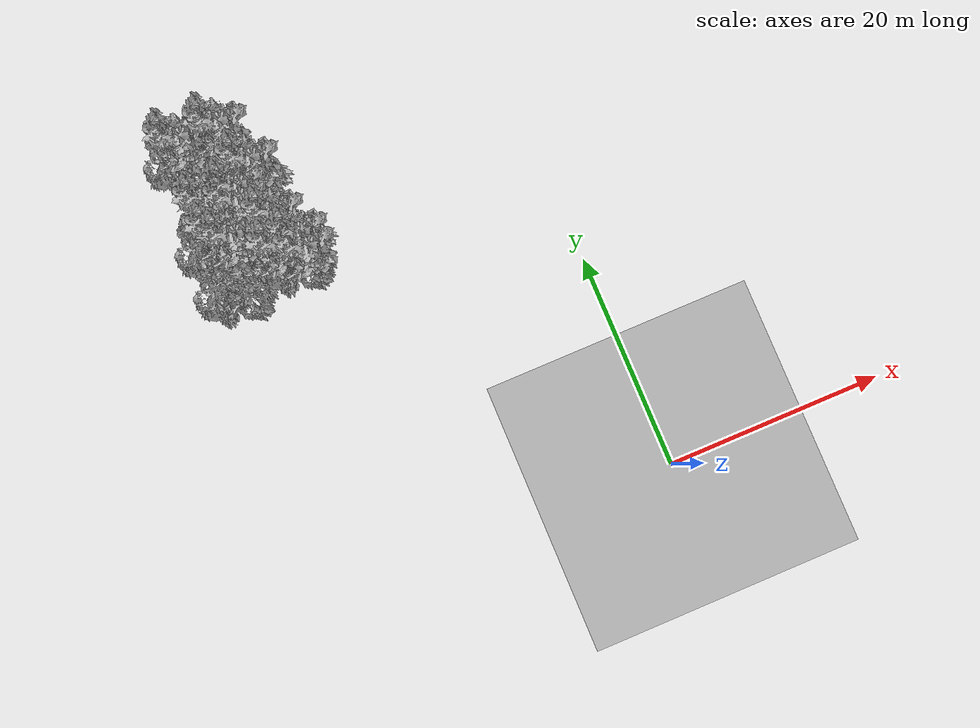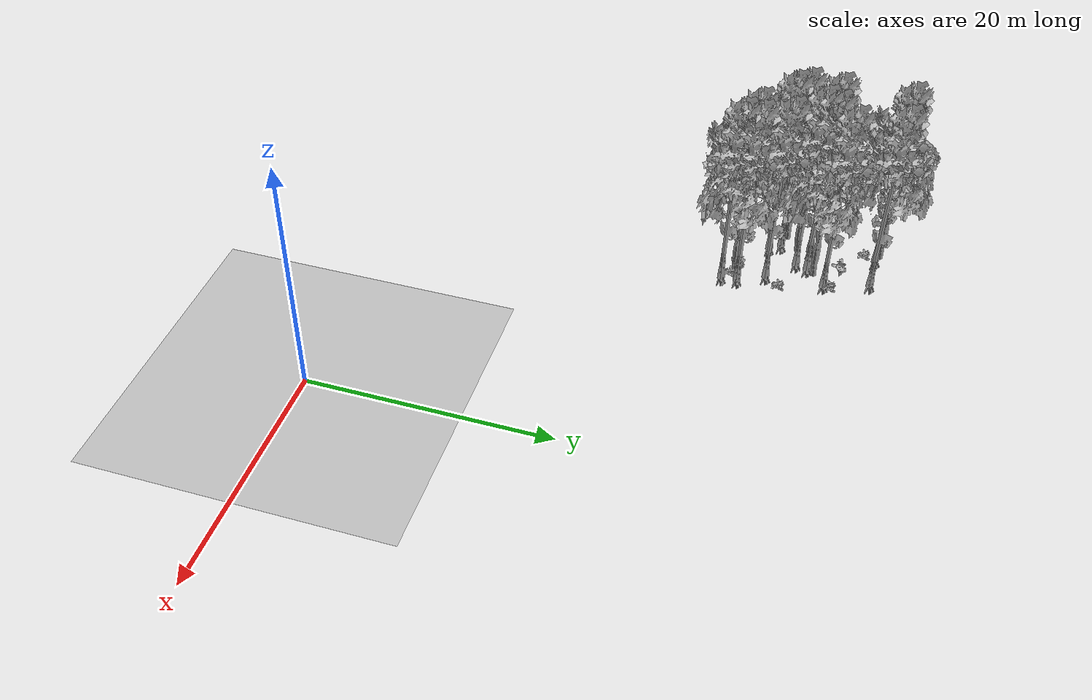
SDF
<sdf version="1.7">
 <world name="default">
  <model name="ground_plane">
   <static>1</static>
   <link name="link">
    <collision name="collision">
     <pose>-50 0 0 0 -0 0</pose>
     <geometry><plane><normal>0 0 1</normal><size>80 80</size></plane></geometry>
     <surface><contact><ode><min_depth>0.01</min_depth><max_vel>0</max_vel></ode></contact></surface>
    </collision>
    <visual name="grass">
     <cast_shadows>0</cast_shadows>
     <geometry>
      <mesh>
       <scale>0.46714285714285714 0.46714285714285714 0.1</scale>
       <uri>file://grass_plane/meshes/grass_plane.dae</uri>
      </mesh>
     </geometry>
    </visual>
   </link>
  </model>
  <model name="Tree 13">
   <static>1</static>
   <pose>-22.846539033407645 28.64149036128063 0 1.57079 -0 0</pose>
   <link name="link">
    <collision name="collision">
     <geometry><mesh><scale>3.5 5 3.5</scale><uri>model://tree_2/meshes/tree_2.obj</uri></mesh></geometry>
    </collision>
    <visual name="visual">
     <geometry><mesh><scale>3.5 5 3.5</scale><uri>model://tree_2/meshes/tree_2.obj</uri></mesh></geometry>
    </visual>
   </link>
  </model>
  <model name="Tree 19">
   <static>1</static>
   <pose>-24.291597076596993 39.67959928283102 0 1.57079 -0 0</pose>
   <link name="link">
    <collision name="collision">
     <geometry><mesh><scale>3.5 5 3.5</scale><uri>model://tree_9/meshes/tree_9.obj</uri></mesh></geometry>
    </collision>
    <visual name="visual">
     <geometry><mesh><scale>3.5 5 3.5</scale><uri>model://tree_9/meshes/tree_9.obj</uri></mesh></geometry>
    </visual>
   </link>
  </model>
  <model name="Tree 91">
   <static>1</static>
   <pose>-24.267522736100084 34.97549790196025 0 1.57079 -0 0</pose>
   <link name="link">
    <collision name="collision">
     <geometry><mesh><scale>3.5 5 3.5</scale><uri>model://tree_2/meshes/tree_2.obj</uri></mesh></geometry>
    </collision>
    <visual name="visual">
     <geometry><mesh><scale>3.5 5 3.5</scale><uri>model://tree_2/meshes/tree_2.obj</uri></mesh></geometry>
    </visual>
   </link>
  </model>
  <model name="Tree 95">
   <static>1</static>
   <pose>-28.18344296402496 39.99848362453858 0 1.57079 -0 0</pose>
   <link name="link">
    <collision name="collision">
     <geometry><mesh><scale>3.5 5 3.5</scale><uri>model://tree_2/meshes/tree_2.obj</uri></mesh></geometry>
    </collision>
    <visual name="visual">
     <geometry><mesh><scale>3.5 5 3.5</scale><uri>model://tree_2/meshes/tree_2.obj</uri></mesh></geometry>
    </visual>
   </link>
  </model>
  <model name="Tree 218">
   <static>1</static>
   <pose>-21.57840250588282 27.766716876980425 0 1.57079 -0 0</pose>
   <link name="link">
    <collision name="collision">
     <geometry><mesh><scale>3.5 5 3.5</scale><uri>model://tree_9/meshes/tree_9.obj</uri></mesh></geometry>
    </collision>
    <visual name="visual">
     <geometry><mesh><scale>3.5 5 3.5</scale><uri>model://tree_9/meshes/tree_9.obj</uri></mesh></geometry>
    </visual>
   </link>
  </model>
  <model name="Tree 223">
   <static>1</static>
   <pose>-24.787022888755782 34.388037533062885 0 1.57079 -0 0</pose>
   <link name="link">
    <collision name="collision">
     <geometry><mesh><scale>3.5 5 3.5</scale><uri>model://tree_9/meshes/tree_9.obj</uri></mesh></geometry>
    </collision>
    <visual name="visual">
     <geometry><mesh><scale>3.5 5 3.5</scale><uri>model://tree_9/meshes/tree_9.obj</uri></mesh></geometry>
    </visual>
   </link>
  </model>
  <model name="Tree 252">
   <static>1</static>
   <pose>-27.575594454108607 39.70890977629362 0 1.57079 -0 0</pose>
   <link name="link">
    <collision name="collision">
     <geometry><mesh><scale>3.5 5 3.5</scale><uri>model://tree_9/meshes/tree_9.obj</uri></mesh></geometry>
    </collision>
    <visual name="visual">
     <geometry><mesh><scale>3.5 5 3.5</scale><uri>model://tree_9/meshes/tree_9.obj</uri></mesh></geometry>
    </visual>
   </link>
  </model>
  <model name="Tree 257">
   <static>1</static>
   <pose>-21.64681672120912 29.079161275077126 0 1.57079 -0 0</pose>
   <link name="link">
    <collision name="collision">
     <geometry><mesh><scale>3.5 5 3.5</scale><uri>model://tree_9/meshes/tree_9.obj</uri></mesh></geometry>
    </collision>
    <visual name="visual">
     <geometry><mesh><scale>3.5 5 3.5</scale><uri>model://tree_9/meshes/tree_9.obj</uri></mesh></geometry>
    </visual>
   </link>
  </model>
  <model name="Tree 274">
   <static>1</static>
   <pose>-27.266594752322366 34.26676148557077 0 1.57079 -0 0</pose>
   <link name="link">
    <collision name="collision">
     <geometry><mesh><scale>3.5 5 3.5</scale><uri>model://tree_9/meshes/tree_9.obj</uri></mesh></geometry>
    </collision>
    <visual name="visual">
     <geometry><mesh><scale>3.5 5 3.5</scale><uri>model://tree_9/meshes/tree_9.obj</uri></mesh></geometry>
    </visual>
   </link>
  </model>
  <model name="Tree 299">
   <static>1</static>
   <pose>-28.379870049304316 28.138641505595544 0 1.57079 -0 0</pose>
   <link name="link">
    <collision name="collision">
     <geometry><mesh><scale>3.5 5 3.5</scale><uri>model://tree_2/meshes/tree_2.obj</uri></mesh></geometry>
    </collision>
    <visual name="visual">
     <geometry><mesh><scale>3.5 5 3.5</scale><uri>model://tree_2/meshes/tree_2.obj</uri></mesh></geometry>
    </visual>
   </link>
  </model>
  <model name="Tree 355">
   <static>1</static>
   <pose>-25.131391191752865 33.41216311175572 0 1.57079 -0 0</pose>
   <link name="link">
    <collision name="collision">
     <geometry><mesh><scale>3.5 5 3.5</scale><uri>model://tree_9/meshes/tree_9.obj</uri></mesh></geometry>
    </collision>
    <visual name="visual">
     <geometry><mesh><scale>3.5 5 3.5</scale><uri>model://tree_9/meshes/tree_9.obj</uri></mesh></geometry>
    </visual>
   </link>
  </model>
  <model name="Tree 442">
   <static>1</static>
   <pose>-22.816803367159594 31.26227337971413 0 1.57079 -0 0</pose>
   <link name="link">
    <collision name="collision">
     <geometry><mesh><scale>3.5 5 3.5</scale><uri>model://tree_9/meshes/tree_9.obj</uri></mesh></geometry>
    </collision>
    <visual name="visual">
     <geometry><mesh><scale>3.5 5 3.5</scale><uri>model://tree_9/meshes/tree_9.obj</uri></mesh></geometry>
    </visual>
   </link>
  </model>
  <model name="Tree 488">
   <static>1</static>
   <pose>-28.48205429753952 32.11733402960152 0 1.57079 -0 0</pose>
   <link name="link">
    <collision name="collision">
     <geometry><mesh><scale>3.5 5 3.5</scale><uri>model://tree_2/meshes/tree_2.obj</uri></mesh></geometry>
    </collision>
    <visual name="visual">
     <geometry><mesh><scale>3.5 5 3.5</scale><uri>model://tree_2/meshes/tree_2.obj</uri></mesh></geometry>
    </visual>
   </link>
  </model>
  <model name="Tree 513">
   <static>1</static>
   <pose>-26.551654272939246 30.891576785255353 0 1.57079 -0 0</pose>
   <link name="link">
    <collision name="collision">
     <geometry><mesh><scale>3.5 5 3.5</scale><uri>model://tree_9/meshes/tree_9.obj</uri></mesh></geometry>
    </collision>
    <visual name="visual">
     <geometry><mesh><scale>3.5 5 3.5</scale><uri>model://tree_9/meshes/tree_9.obj</uri></mesh></geometry>
    </visual>
   </link>
  </model>
  <model name="Tree 515">
   <static>1</static>
   <pose>-23.341860597640824 28.723862944607788 0 1.57079 -0 0</pose>
   <link name="link">
    <collision name="collision">
     <geometry><mesh><scale>3.5 5 3.5</scale><uri>model://tree_9/meshes/tree_9.obj</uri></mesh></geometry>
    </collision>
    <visual name="visual">
     <geometry><mesh><scale>3.5 5 3.5</scale><uri>model://tree_9/meshes/tree_9.obj</uri></mesh></geometry>
    </visual>
   </link>
  </model>
  <model name="Tree 525">
   <static>1</static>
   <pose>-27.19944142781664 31.800206217872244 0 1.57079 -0 0</pose>
   <link name="link">
    <collision name="collision">
     <geometry><mesh><scale>3.5 5 3.5</scale><uri>model://tree_9/meshes/tree_9.obj</uri></mesh></geometry>
    </collision>
    <visual name="visual">
     <geometry><mesh><scale>3.5 5 3.5</scale><uri>model://tree_9/meshes/tree_9.obj</uri></mesh></geometry>
    </visual>
   </link>
  </model>
  <model name="Tree 550">
   <static>1</static>
   <pose>-23.06754822479899 36.00705406143493 0 1.57079 -0 0</pose>
   <link name="link">
    <collision name="collision">
     <geometry><mesh><scale>3.5 5 3.5</scale><uri>model://tree_9/meshes/tree_9.obj</uri></mesh></geometry>
    </collision>
    <visual name="visual">
     <geometry><mesh><scale>3.5 5 3.5</scale><uri>model://tree_9/meshes/tree_9.obj</uri></mesh></geometry>
    </visual>
   </link>
  </model>
  <model name="Tree 584">
   <static>1</static>
   <pose>-26.989955677928144 33.163743840335684 0 1.57079 -0 0</pose>
   <link name="link">
    <collision name="collision">
     <geometry><mesh><scale>3.5 5 3.5</scale><uri>model://tree_2/meshes/tree_2.obj</uri></mesh></geometry>
    </collision>
    <visual name="visual">
     <geometry><mesh><scale>3.5 5 3.5</scale><uri>model://tree_2/meshes/tree_2.obj</uri></mesh></geometry>
    </visual>
   </link>
  </model>
  <model name="Bush 11">
   <static>1</static>
   <pose>-22.727785316763814 29.104679311779492 0 1.57079 -0 0</pose>
   <link name="link">
    <collision name="collision">
     <geometry><mesh><scale>2 2 2</scale><uri>model://bush_5/meshes/bush_5.obj</uri></mesh></geometry>
     <surface><contact><collide_without_contact>false</collide_without_contact></contact></surface>
    </collision>
    <visual name="visual">
     <geometry><mesh><scale>2 2 2</scale><uri>model://bush_5/meshes/bush_5.obj</uri></mesh></geometry>
    </visual>
   </link>
  </model>
  <model name="Bush 120">
   <static>1</static>
   <pose>-28.06874328289065 38.71595784925931 0 1.57079 -0 0</pose>
   <link name="link">
    <collision name="collision">
     <geometry><mesh><scale>2 2 2</scale><uri>model://bush_2/meshes/bush_2.obj</uri></mesh></geometry>
     <surface><contact><collide_without_contact>false</collide_without_contact></contact></surface>
    </collision>
    <visual name="visual">
     <geometry><mesh><scale>2 2 2</scale><uri>model://bush_2/meshes/bush_2.obj</uri></mesh></geometry>
    </visual>
   </link>
  </model>
  <model name="Bush 251">
   <static>1</static>
   <pose>-24.71681335160868 37.095073191161674 0 1.57079 -0 0</pose>
   <link name="link">
    <collision name="collision">
     <geometry><mesh><scale>2 2 2</scale><uri>model://bush_0/meshes/bush_0.obj</uri></mesh></geometry>
     <surface><contact><collide_without_contact>false</collide_without_contact></contact></surface>
    </collision>
    <visual name="visual">
     <geometry><mesh><scale>2 2 2</scale><uri>model://bush_0/meshes/bush_0.obj</uri></mesh></geometry>
    </visual>
   </link>
  </model>
  <model name="Bush 254">
   <static>1</static>
   <pose>-21.995939991865047 32.44771510035761 0 1.57079 -0 0</pose>
   <link name="link">
    <collision name="collision">
     <geometry><mesh><scale>2 2 2</scale><uri>model://bush_2/meshes/bush_2.obj</uri></mesh></geometry>
     <surface><contact><collide_without_contact>false</collide_without_contact></contact></surface>
    </collision>
    <visual name="visual">
     <geometry><mesh><scale>2 2 2</scale><uri>model://bush_2/meshes/bush_2.obj</uri></mesh></geometry>
    </visual>
   </link>
  </model>
  <model name="Bush 309">
   <static>1</static>
   <pose>-23.0754383790608 36.5269886682987 0 1.57079 -0 0</pose>
   <link name="link">
    <collision name="collision">
     <geometry><mesh><scale>2 2 2</scale><uri>model://bush_2/meshes/bush_2.obj</uri></mesh></geometry>
     <surface><contact><collide_without_contact>false</collide_without_contact></contact></surface>
    </collision>
    <visual name="visual">
     <geometry><mesh><scale>2 2 2</scale><uri>model://bush_2/meshes/bush_2.obj</uri></mesh></geometry>
    </visual>
   </link>
  </model>
  <model name="Bush 320">
   <static>1</static>
   <pose>-22.512578618846238 28.36920275406885 0 1.57079 -0 0</pose>
   <link name="link">
    <collision name="collision">
     <geometry><mesh><scale>2 2 2</scale><uri>model://bush_2/meshes/bush_2.obj</uri></mesh></geometry>
     <surface><contact><collide_without_contact>false</collide_without_contact></contact></surface>
    </collision>
    <visual name="visual">
     <geometry><mesh><scale>2 2 2</scale><uri>model://bush_2/meshes/bush_2.obj</uri></mesh></geometry>
    </visual>
   </link>
  </model>
 </world>
</sdf>
